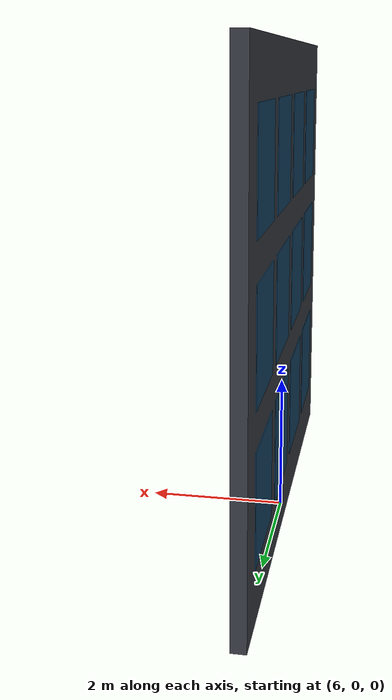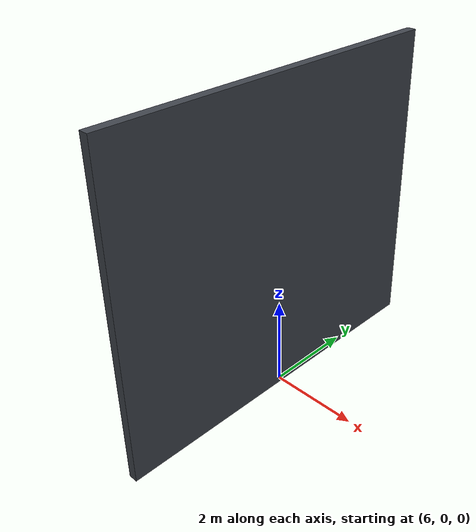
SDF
<?xml version="1.0"?>

<sdf version="1.10">

  <model name="skyscrub_facade">

    <static>true</static>

    <!--
      World position:
        X = 6.0 m from drone spawn
        Y = 0.0 m
        Z = 3.5 m

      Overall facade:
        width  = 8.0 m
        height = 7.0 m
    -->

    <pose>6 0 3.5 0 0 0</pose>

    <link name="facade">

      <!-- Main structural wall -->

      <collision name="wall_collision">
        <geometry>
          <box>
            <size>0.20 8.00 7.00</size>
          </box>
        </geometry>
      </collision>

      <visual name="wall_visual">

        <geometry>
          <box>
            <size>0.20 8.00 7.00</size>
          </box>
        </geometry>

        <material>
          <ambient>0.20 0.22 0.25 1</ambient>
          <diffuse>0.25 0.27 0.30 1</diffuse>
          <specular>0.10 0.10 0.10 1</specular>
        </material>

      </visual>

      <!-- ROW 1 : world height approximately 1.5 m              -->

      <visual name="window_r1_c1">
        <pose>-0.106 -2.70 -2.00 0 0 0</pose>
        <geometry>
          <box>
            <size>0.01 1.45 1.50</size>
          </box>
        </geometry>
        <material>
          <ambient>0.08 0.20 0.30 1</ambient>
          <diffuse>0.10 0.30 0.45 1</diffuse>
          <specular>0.80 0.80 0.90 1</specular>
        </material>
      </visual>

      <visual name="window_r1_c2">
        <pose>-0.106 -0.90 -2.00 0 0 0</pose>
        <geometry>
          <box>
            <size>0.01 1.45 1.50</size>
          </box>
        </geometry>
        <material>
          <ambient>0.08 0.20 0.30 1</ambient>
          <diffuse>0.10 0.30 0.45 1</diffuse>
          <specular>0.80 0.80 0.90 1</specular>
        </material>
      </visual>

      <visual name="window_r1_c3">
        <pose>-0.106 0.90 -2.00 0 0 0</pose>
        <geometry>
          <box>
            <size>0.01 1.45 1.50</size>
          </box>
        </geometry>
        <material>
          <ambient>0.08 0.20 0.30 1</ambient>
          <diffuse>0.10 0.30 0.45 1</diffuse>
          <specular>0.80 0.80 0.90 1</specular>
        </material>
      </visual>

      <visual name="window_r1_c4">
        <pose>-0.106 2.70 -2.00 0 0 0</pose>
        <geometry>
          <box>
            <size>0.01 1.45 1.50</size>
          </box>
        </geometry>
        <material>
          <ambient>0.08 0.20 0.30 1</ambient>
          <diffuse>0.10 0.30 0.45 1</diffuse>
          <specular>0.80 0.80 0.90 1</specular>
        </material>
      </visual>

      <!-- ROW 2 : world height approximately 3.5 m              -->

      <visual name="window_r2_c1">
        <pose>-0.106 -2.70 0.00 0 0 0</pose>
        <geometry>
          <box>
            <size>0.01 1.45 1.50</size>
          </box>
        </geometry>
        <material>
          <ambient>0.08 0.20 0.30 1</ambient>
          <diffuse>0.10 0.30 0.45 1</diffuse>
          <specular>0.80 0.80 0.90 1</specular>
        </material>
      </visual>

      <visual name="window_r2_c2">
        <pose>-0.106 -0.90 0.00 0 0 0</pose>
        <geometry>
          <box>
            <size>0.01 1.45 1.50</size>
          </box>
        </geometry>
        <material>
          <ambient>0.08 0.20 0.30 1</ambient>
          <diffuse>0.10 0.30 0.45 1</diffuse>
          <specular>0.80 0.80 0.90 1</specular>
        </material>
      </visual>

      <visual name="window_r2_c3">
        <pose>-0.106 0.90 0.00 0 0 0</pose>
        <geometry>
          <box>
            <size>0.01 1.45 1.50</size>
          </box>
        </geometry>
        <material>
          <ambient>0.08 0.20 0.30 1</ambient>
          <diffuse>0.10 0.30 0.45 1</diffuse>
          <specular>0.80 0.80 0.90 1</specular>
        </material>
      </visual>

      <visual name="window_r2_c4">
        <pose>-0.106 2.70 0.00 0 0 0</pose>
        <geometry>
          <box>
            <size>0.01 1.45 1.50</size>
          </box>
        </geometry>
        <material>
          <ambient>0.08 0.20 0.30 1</ambient>
          <diffuse>0.10 0.30 0.45 1</diffuse>
          <specular>0.80 0.80 0.90 1</specular>
        </material>
      </visual>

      <!-- ROW 3 : world height approximately 5.5 m              -->

      <visual name="window_r3_c1">
        <pose>-0.106 -2.70 2.00 0 0 0</pose>
        <geometry>
          <box>
            <size>0.01 1.45 1.50</size>
          </box>
        </geometry>
        <material>
          <ambient>0.08 0.20 0.30 1</ambient>
          <diffuse>0.10 0.30 0.45 1</diffuse>
          <specular>0.80 0.80 0.90 1</specular>
        </material>
      </visual>

      <visual name="window_r3_c2">
        <pose>-0.106 -0.90 2.00 0 0 0</pose>
        <geometry>
          <box>
            <size>0.01 1.45 1.50</size>
          </box>
        </geometry>
        <material>
          <ambient>0.08 0.20 0.30 1</ambient>
          <diffuse>0.10 0.30 0.45 1</diffuse>
          <specular>0.80 0.80 0.90 1</specular>
        </material>
      </visual>

      <visual name="window_r3_c3">
        <pose>-0.106 0.90 2.00 0 0 0</pose>
        <geometry>
          <box>
            <size>0.01 1.45 1.50</size>
          </box>
        </geometry>
        <material>
          <ambient>0.08 0.20 0.30 1</ambient>
          <diffuse>0.10 0.30 0.45 1</diffuse>
          <specular>0.80 0.80 0.90 1</specular>
        </material>
      </visual>

      <visual name="window_r3_c4">
        <pose>-0.106 2.70 2.00 0 0 0</pose>
        <geometry>
          <box>
            <size>0.01 1.45 1.50</size>
          </box>
        </geometry>
        <material>
          <ambient>0.08 0.20 0.30 1</ambient>
          <diffuse>0.10 0.30 0.45 1</diffuse>
          <specular>0.80 0.80 0.90 1</specular>
        </material>
      </visual>

    </link>

  </model>

</sdf>
